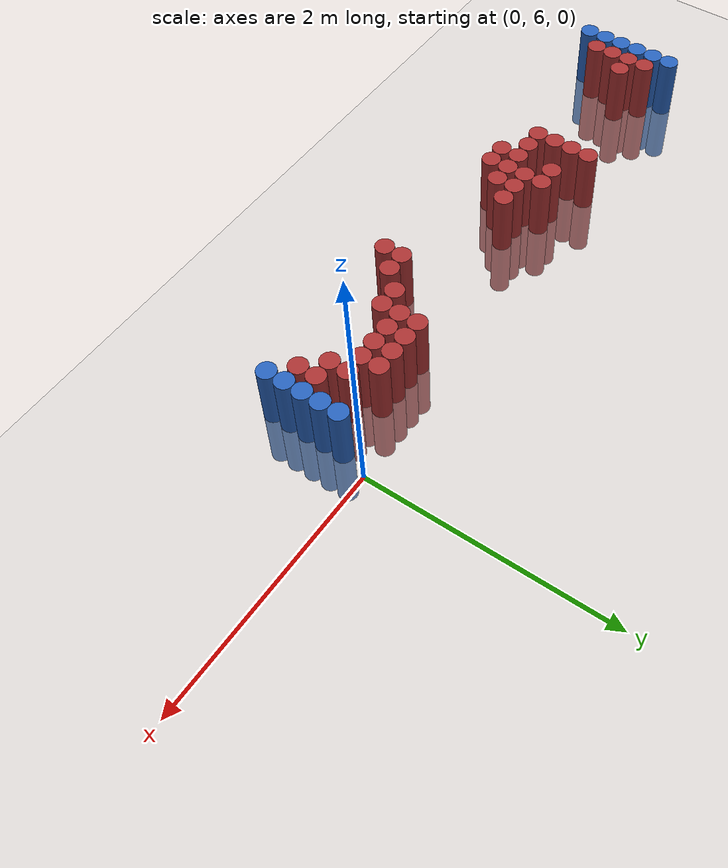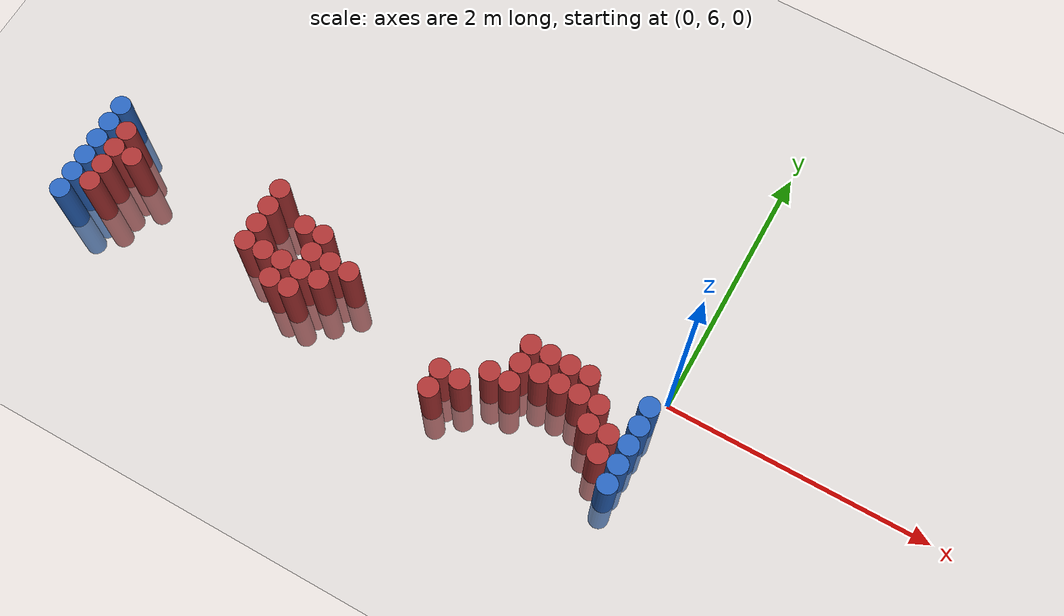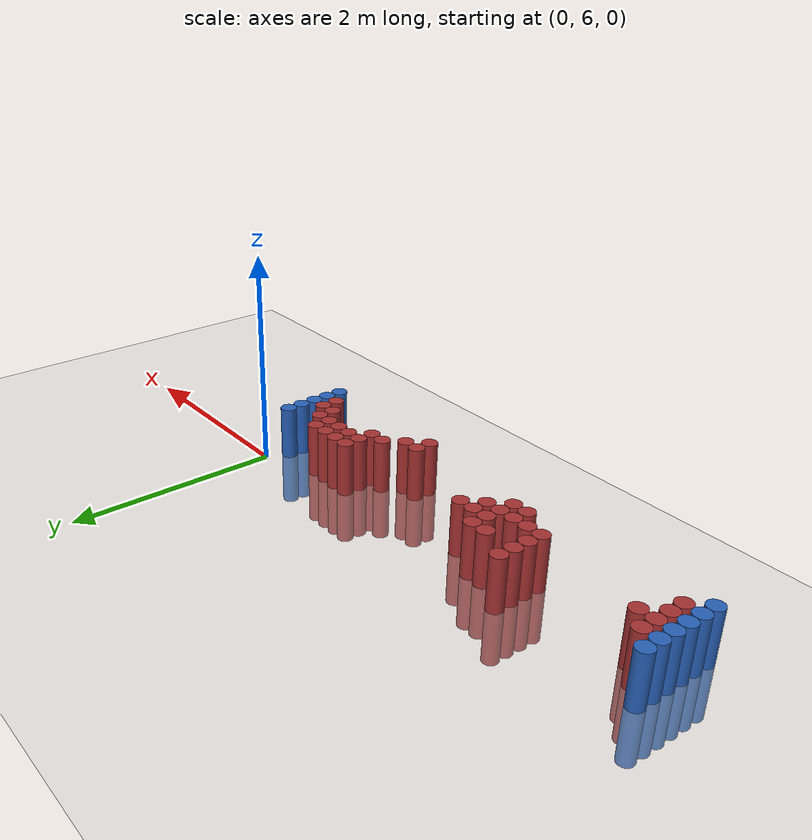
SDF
<sdf version="1.6">
 <world name="default">
  <model name="ground_plane">
   <static>1</static>
   <link name="link">
    <collision name="collision">
     <geometry><plane><normal>0 0 1</normal><size>100 100</size></plane></geometry>
     <surface><friction><ode><mu>100</mu><mu2>50</mu2></ode></friction></surface>
    </collision>
    <visual name="visual">
     <cast_shadows>0</cast_shadows>
     <geometry><plane><normal>0 0 1</normal><size>100 100</size></plane></geometry>
     <material>
      <script><uri>file://media/materials/scripts/gazebo.material</uri><name>Gazebo/Grey</name></script>
     </material>
    </visual>
   </link>
  </model>
  <model name="unit_cylinder_96">
   <static>1</static>
   <pose>-4.425000 5.175000 0.000000 0.000000 0.000000 0.000000</pose>
   <link name="link">
    <inertial>
     <mass>1</mass>
     <inertia><ixx>0.145833</ixx><ixy>0</ixy><ixz>0</ixz><iyy>0.145833</iyy><iyz>0</iyz><izz>0.125</izz></inertia>
    </inertial>
    <collision name="collision">
     <geometry><cylinder><radius>0.075000</radius><length>1</length></cylinder></geometry>
    </collision>
    <visual name="visual">
     <geometry><cylinder><radius>0.075000</radius><length>1</length></cylinder></geometry>
     <material>
      <ambient>0.152000 0.379000 0.720000 1</ambient>
      <diffuse>0.152000 0.379000 0.720000 1</diffuse>
     </material>
     <material>
      <script><name>Gazebo/Grey</name><uri>file://media/materials/scripts/gazebo.material</uri></script>
     </material>
    </visual>
   </link>
  </model>
  <model name="unit_cylinder_97">
   <static>1</static>
   <pose>-4.425000 5.325000 0.000000 0.000000 0.000000 0.000000</pose>
   <link name="link">
    <inertial>
     <mass>1</mass>
     <inertia><ixx>0.145833</ixx><ixy>0</ixy><ixz>0</ixz><iyy>0.145833</iyy><iyz>0</iyz><izz>0.125</izz></inertia>
    </inertial>
    <collision name="collision">
     <geometry><cylinder><radius>0.075000</radius><length>1</length></cylinder></geometry>
    </collision>
    <visual name="visual">
     <geometry><cylinder><radius>0.075000</radius><length>1</length></cylinder></geometry>
     <material>
      <ambient>0.152000 0.379000 0.720000 1</ambient>
      <diffuse>0.152000 0.379000 0.720000 1</diffuse>
     </material>
     <material>
      <script><name>Gazebo/Grey</name><uri>file://media/materials/scripts/gazebo.material</uri></script>
     </material>
    </visual>
   </link>
  </model>
  <model name="unit_cylinder_98">
   <static>1</static>
   <pose>-4.425000 5.475000 0.000000 0.000000 0.000000 0.000000</pose>
   <link name="link">
    <inertial>
     <mass>1</mass>
     <inertia><ixx>0.145833</ixx><ixy>0</ixy><ixz>0</ixz><iyy>0.145833</iyy><iyz>0</iyz><izz>0.125</izz></inertia>
    </inertial>
    <collision name="collision">
     <geometry><cylinder><radius>0.075000</radius><length>1</length></cylinder></geometry>
    </collision>
    <visual name="visual">
     <geometry><cylinder><radius>0.075000</radius><length>1</length></cylinder></geometry>
     <material>
      <ambient>0.152000 0.379000 0.720000 1</ambient>
      <diffuse>0.152000 0.379000 0.720000 1</diffuse>
     </material>
     <material>
      <script><name>Gazebo/Grey</name><uri>file://media/materials/scripts/gazebo.material</uri></script>
     </material>
    </visual>
   </link>
  </model>
  <model name="unit_cylinder_99">
   <static>1</static>
   <pose>-4.425000 5.625000 0.000000 0.000000 0.000000 0.000000</pose>
   <link name="link">
    <inertial>
     <mass>1</mass>
     <inertia><ixx>0.145833</ixx><ixy>0</ixy><ixz>0</ixz><iyy>0.145833</iyy><iyz>0</iyz><izz>0.125</izz></inertia>
    </inertial>
    <collision name="collision">
     <geometry><cylinder><radius>0.075000</radius><length>1</length></cylinder></geometry>
    </collision>
    <visual name="visual">
     <geometry><cylinder><radius>0.075000</radius><length>1</length></cylinder></geometry>
     <material>
      <ambient>0.152000 0.379000 0.720000 1</ambient>
      <diffuse>0.152000 0.379000 0.720000 1</diffuse>
     </material>
     <material>
      <script><name>Gazebo/Grey</name><uri>file://media/materials/scripts/gazebo.material</uri></script>
     </material>
    </visual>
   </link>
  </model>
  <model name="unit_cylinder_100">
   <static>1</static>
   <pose>-4.425000 5.775000 0.000000 0.000000 0.000000 0.000000</pose>
   <link name="link">
    <inertial>
     <mass>1</mass>
     <inertia><ixx>0.145833</ixx><ixy>0</ixy><ixz>0</ixz><iyy>0.145833</iyy><iyz>0</iyz><izz>0.125</izz></inertia>
    </inertial>
    <collision name="collision">
     <geometry><cylinder><radius>0.075000</radius><length>1</length></cylinder></geometry>
    </collision>
    <visual name="visual">
     <geometry><cylinder><radius>0.075000</radius><length>1</length></cylinder></geometry>
     <material>
      <ambient>0.152000 0.379000 0.720000 1</ambient>
      <diffuse>0.152000 0.379000 0.720000 1</diffuse>
     </material>
     <material>
      <script><name>Gazebo/Grey</name><uri>file://media/materials/scripts/gazebo.material</uri></script>
     </material>
    </visual>
   </link>
  </model>
  <model name="unit_cylinder_101">
   <static>1</static>
   <pose>-4.425000 5.925000 0.000000 0.000000 0.000000 0.000000</pose>
   <link name="link">
    <inertial>
     <mass>1</mass>
     <inertia><ixx>0.145833</ixx><ixy>0</ixy><ixz>0</ixz><iyy>0.145833</iyy><iyz>0</iyz><izz>0.125</izz></inertia>
    </inertial>
    <collision name="collision">
     <geometry><cylinder><radius>0.075000</radius><length>1</length></cylinder></geometry>
    </collision>
    <visual name="visual">
     <geometry><cylinder><radius>0.075000</radius><length>1</length></cylinder></geometry>
     <material>
      <ambient>0.152000 0.379000 0.720000 1</ambient>
      <diffuse>0.152000 0.379000 0.720000 1</diffuse>
     </material>
     <material>
      <script><name>Gazebo/Grey</name><uri>file://media/materials/scripts/gazebo.material</uri></script>
     </material>
    </visual>
   </link>
  </model>
  <model name="unit_cylinder_126">
   <static>1</static>
   <pose>-4.275000 5.325000 0.000000 0.000000 0.000000 0.000000</pose>
   <link name="link">
    <inertial>
     <mass>1</mass>
     <inertia><ixx>0.145833</ixx><ixy>0</ixy><ixz>0</ixz><iyy>0.145833</iyy><iyz>0</iyz><izz>0.125</izz></inertia>
    </inertial>
    <collision name="collision">
     <geometry><cylinder><radius>0.075000</radius><length>1</length></cylinder></geometry>
    </collision>
    <visual name="visual">
     <geometry><cylinder><radius>0.075000</radius><length>1</length></cylinder></geometry>
     <material>
      <ambient>0.648000 0.192000 0.192000 1</ambient>
      <diffuse>0.648000 0.192000 0.192000 1</diffuse>
     </material>
     <material>
      <script><name>Gazebo/Grey</name><uri>file://media/materials/scripts/gazebo.material</uri></script>
     </material>
    </visual>
   </link>
  </model>
  <model name="unit_cylinder_127">
   <static>1</static>
   <pose>-4.275000 5.475000 0.000000 0.000000 0.000000 0.000000</pose>
   <link name="link">
    <inertial>
     <mass>1</mass>
     <inertia><ixx>0.145833</ixx><ixy>0</ixy><ixz>0</ixz><iyy>0.145833</iyy><iyz>0</iyz><izz>0.125</izz></inertia>
    </inertial>
    <collision name="collision">
     <geometry><cylinder><radius>0.075000</radius><length>1</length></cylinder></geometry>
    </collision>
    <visual name="visual">
     <geometry><cylinder><radius>0.075000</radius><length>1</length></cylinder></geometry>
     <material>
      <ambient>0.648000 0.192000 0.192000 1</ambient>
      <diffuse>0.648000 0.192000 0.192000 1</diffuse>
     </material>
     <material>
      <script><name>Gazebo/Grey</name><uri>file://media/materials/scripts/gazebo.material</uri></script>
     </material>
    </visual>
   </link>
  </model>
  <model name="unit_cylinder_128">
   <static>1</static>
   <pose>-4.275000 5.625000 0.000000 0.000000 0.000000 0.000000</pose>
   <link name="link">
    <inertial>
     <mass>1</mass>
     <inertia><ixx>0.145833</ixx><ixy>0</ixy><ixz>0</ixz><iyy>0.145833</iyy><iyz>0</iyz><izz>0.125</izz></inertia>
    </inertial>
    <collision name="collision">
     <geometry><cylinder><radius>0.075000</radius><length>1</length></cylinder></geometry>
    </collision>
    <visual name="visual">
     <geometry><cylinder><radius>0.075000</radius><length>1</length></cylinder></geometry>
     <material>
      <ambient>0.648000 0.192000 0.192000 1</ambient>
      <diffuse>0.648000 0.192000 0.192000 1</diffuse>
     </material>
     <material>
      <script><name>Gazebo/Grey</name><uri>file://media/materials/scripts/gazebo.material</uri></script>
     </material>
    </visual>
   </link>
  </model>
  <model name="unit_cylinder_129">
   <static>1</static>
   <pose>-4.275000 5.775000 0.000000 0.000000 0.000000 0.000000</pose>
   <link name="link">
    <inertial>
     <mass>1</mass>
     <inertia><ixx>0.145833</ixx><ixy>0</ixy><ixz>0</ixz><iyy>0.145833</iyy><iyz>0</iyz><izz>0.125</izz></inertia>
    </inertial>
    <collision name="collision">
     <geometry><cylinder><radius>0.075000</radius><length>1</length></cylinder></geometry>
    </collision>
    <visual name="visual">
     <geometry><cylinder><radius>0.075000</radius><length>1</length></cylinder></geometry>
     <material>
      <ambient>0.648000 0.192000 0.192000 1</ambient>
      <diffuse>0.648000 0.192000 0.192000 1</diffuse>
     </material>
     <material>
      <script><name>Gazebo/Grey</name><uri>file://media/materials/scripts/gazebo.material</uri></script>
     </material>
    </visual>
   </link>
  </model>
  <model name="unit_cylinder_141">
   <static>1</static>
   <pose>-4.125000 5.625000 0.000000 0.000000 0.000000 0.000000</pose>
   <link name="link">
    <inertial>
     <mass>1</mass>
     <inertia><ixx>0.145833</ixx><ixy>0</ixy><ixz>0</ixz><iyy>0.145833</iyy><iyz>0</iyz><izz>0.125</izz></inertia>
    </inertial>
    <collision name="collision">
     <geometry><cylinder><radius>0.075000</radius><length>1</length></cylinder></geometry>
    </collision>
    <visual name="visual">
     <geometry><cylinder><radius>0.075000</radius><length>1</length></cylinder></geometry>
     <material>
      <ambient>0.648000 0.192000 0.192000 1</ambient>
      <diffuse>0.648000 0.192000 0.192000 1</diffuse>
     </material>
     <material>
      <script><name>Gazebo/Grey</name><uri>file://media/materials/scripts/gazebo.material</uri></script>
     </material>
    </visual>
   </link>
  </model>
  <model name="unit_cylinder_172">
   <static>1</static>
   <pose>-3.075000 5.475000 0.000000 0.000000 0.000000 0.000000</pose>
   <link name="link">
    <inertial>
     <mass>1</mass>
     <inertia><ixx>0.145833</ixx><ixy>0</ixy><ixz>0</ixz><iyy>0.145833</iyy><iyz>0</iyz><izz>0.125</izz></inertia>
    </inertial>
    <collision name="collision">
     <geometry><cylinder><radius>0.075000</radius><length>1</length></cylinder></geometry>
    </collision>
    <visual name="visual">
     <geometry><cylinder><radius>0.075000</radius><length>1</length></cylinder></geometry>
     <material>
      <ambient>0.648000 0.192000 0.192000 1</ambient>
      <diffuse>0.648000 0.192000 0.192000 1</diffuse>
     </material>
     <material>
      <script><name>Gazebo/Grey</name><uri>file://media/materials/scripts/gazebo.material</uri></script>
     </material>
    </visual>
   </link>
  </model>
  <model name="unit_cylinder_173">
   <static>1</static>
   <pose>-3.075000 5.625000 0.000000 0.000000 0.000000 0.000000</pose>
   <link name="link">
    <inertial>
     <mass>1</mass>
     <inertia><ixx>0.145833</ixx><ixy>0</ixy><ixz>0</ixz><iyy>0.145833</iyy><iyz>0</iyz><izz>0.125</izz></inertia>
    </inertial>
    <collision name="collision">
     <geometry><cylinder><radius>0.075000</radius><length>1</length></cylinder></geometry>
    </collision>
    <visual name="visual">
     <geometry><cylinder><radius>0.075000</radius><length>1</length></cylinder></geometry>
     <material>
      <ambient>0.648000 0.192000 0.192000 1</ambient>
      <diffuse>0.648000 0.192000 0.192000 1</diffuse>
     </material>
     <material>
      <script><name>Gazebo/Grey</name><uri>file://media/materials/scripts/gazebo.material</uri></script>
     </material>
    </visual>
   </link>
  </model>
  <model name="unit_cylinder_174">
   <static>1</static>
   <pose>-3.075000 5.775000 0.000000 0.000000 0.000000 0.000000</pose>
   <link name="link">
    <inertial>
     <mass>1</mass>
     <inertia><ixx>0.145833</ixx><ixy>0</ixy><ixz>0</ixz><iyy>0.145833</iyy><iyz>0</iyz><izz>0.125</izz></inertia>
    </inertial>
    <collision name="collision">
     <geometry><cylinder><radius>0.075000</radius><length>1</length></cylinder></geometry>
    </collision>
    <visual name="visual">
     <geometry><cylinder><radius>0.075000</radius><length>1</length></cylinder></geometry>
     <material>
      <ambient>0.648000 0.192000 0.192000 1</ambient>
      <diffuse>0.648000 0.192000 0.192000 1</diffuse>
     </material>
     <material>
      <script><name>Gazebo/Grey</name><uri>file://media/materials/scripts/gazebo.material</uri></script>
     </material>
    </visual>
   </link>
  </model>
  <model name="unit_cylinder_175">
   <static>1</static>
   <pose>-3.075000 5.925000 0.000000 0.000000 0.000000 0.000000</pose>
   <link name="link">
    <inertial>
     <mass>1</mass>
     <inertia><ixx>0.145833</ixx><ixy>0</ixy><ixz>0</ixz><iyy>0.145833</iyy><iyz>0</iyz><izz>0.125</izz></inertia>
    </inertial>
    <collision name="collision">
     <geometry><cylinder><radius>0.075000</radius><length>1</length></cylinder></geometry>
    </collision>
    <visual name="visual">
     <geometry><cylinder><radius>0.075000</radius><length>1</length></cylinder></geometry>
     <material>
      <ambient>0.648000 0.192000 0.192000 1</ambient>
      <diffuse>0.648000 0.192000 0.192000 1</diffuse>
     </material>
     <material>
      <script><name>Gazebo/Grey</name><uri>file://media/materials/scripts/gazebo.material</uri></script>
     </material>
    </visual>
   </link>
  </model>
  <model name="unit_cylinder_176">
   <static>1</static>
   <pose>-2.925000 5.475000 0.000000 0.000000 0.000000 0.000000</pose>
   <link name="link">
    <inertial>
     <mass>1</mass>
     <inertia><ixx>0.145833</ixx><ixy>0</ixy><ixz>0</ixz><iyy>0.145833</iyy><iyz>0</iyz><izz>0.125</izz></inertia>
    </inertial>
    <collision name="collision">
     <geometry><cylinder><radius>0.075000</radius><length>1</length></cylinder></geometry>
    </collision>
    <visual name="visual">
     <geometry><cylinder><radius>0.075000</radius><length>1</length></cylinder></geometry>
     <material>
      <ambient>0.648000 0.192000 0.192000 1</ambient>
      <diffuse>0.648000 0.192000 0.192000 1</diffuse>
     </material>
     <material>
      <script><name>Gazebo/Grey</name><uri>file://media/materials/scripts/gazebo.material</uri></script>
     </material>
    </visual>
   </link>
  </model>
  <model name="unit_cylinder_179">
   <static>1</static>
   <pose>-2.775000 5.325000 0.000000 0.000000 0.000000 0.000000</pose>
   <link name="link">
    <inertial>
     <mass>1</mass>
     <inertia><ixx>0.145833</ixx><ixy>0</ixy><ixz>0</ixz><iyy>0.145833</iyy><iyz>0</iyz><izz>0.125</izz></inertia>
    </inertial>
    <collision name="collision">
     <geometry><cylinder><radius>0.075000</radius><length>1</length></cylinder></geometry>
    </collision>
    <visual name="visual">
     <geometry><cylinder><radius>0.075000</radius><length>1</length></cylinder></geometry>
     <material>
      <ambient>0.648000 0.192000 0.192000 1</ambient>
      <diffuse>0.648000 0.192000 0.192000 1</diffuse>
     </material>
     <material>
      <script><name>Gazebo/Grey</name><uri>file://media/materials/scripts/gazebo.material</uri></script>
     </material>
    </visual>
   </link>
  </model>
  <model name="unit_cylinder_180">
   <static>1</static>
   <pose>-2.775000 5.475000 0.000000 0.000000 0.000000 0.000000</pose>
   <link name="link">
    <inertial>
     <mass>1</mass>
     <inertia><ixx>0.145833</ixx><ixy>0</ixy><ixz>0</ixz><iyy>0.145833</iyy><iyz>0</iyz><izz>0.125</izz></inertia>
    </inertial>
    <collision name="collision">
     <geometry><cylinder><radius>0.075000</radius><length>1</length></cylinder></geometry>
    </collision>
    <visual name="visual">
     <geometry><cylinder><radius>0.075000</radius><length>1</length></cylinder></geometry>
     <material>
      <ambient>0.648000 0.192000 0.192000 1</ambient>
      <diffuse>0.648000 0.192000 0.192000 1</diffuse>
     </material>
     <material>
      <script><name>Gazebo/Grey</name><uri>file://media/materials/scripts/gazebo.material</uri></script>
     </material>
    </visual>
   </link>
  </model>
  <model name="unit_cylinder_181">
   <static>1</static>
   <pose>-2.775000 5.775000 0.000000 0.000000 0.000000 0.000000</pose>
   <link name="link">
    <inertial>
     <mass>1</mass>
     <inertia><ixx>0.145833</ixx><ixy>0</ixy><ixz>0</ixz><iyy>0.145833</iyy><iyz>0</iyz><izz>0.125</izz></inertia>
    </inertial>
    <collision name="collision">
     <geometry><cylinder><radius>0.075000</radius><length>1</length></cylinder></geometry>
    </collision>
    <visual name="visual">
     <geometry><cylinder><radius>0.075000</radius><length>1</length></cylinder></geometry>
     <material>
      <ambient>0.648000 0.192000 0.192000 1</ambient>
      <diffuse>0.648000 0.192000 0.192000 1</diffuse>
     </material>
     <material>
      <script><name>Gazebo/Grey</name><uri>file://media/materials/scripts/gazebo.material</uri></script>
     </material>
    </visual>
   </link>
  </model>
  <model name="unit_cylinder_183">
   <static>1</static>
   <pose>-2.625000 5.325000 0.000000 0.000000 0.000000 0.000000</pose>
   <link name="link">
    <inertial>
     <mass>1</mass>
     <inertia><ixx>0.145833</ixx><ixy>0</ixy><ixz>0</ixz><iyy>0.145833</iyy><iyz>0</iyz><izz>0.125</izz></inertia>
    </inertial>
    <collision name="collision">
     <geometry><cylinder><radius>0.075000</radius><length>1</length></cylinder></geometry>
    </collision>
    <visual name="visual">
     <geometry><cylinder><radius>0.075000</radius><length>1</length></cylinder></geometry>
     <material>
      <ambient>0.648000 0.192000 0.192000 1</ambient>
      <diffuse>0.648000 0.192000 0.192000 1</diffuse>
     </material>
     <material>
      <script><name>Gazebo/Grey</name><uri>file://media/materials/scripts/gazebo.material</uri></script>
     </material>
    </visual>
   </link>
  </model>
  <model name="unit_cylinder_184">
   <static>1</static>
   <pose>-2.625000 5.475000 0.000000 0.000000 0.000000 0.000000</pose>
   <link name="link">
    <inertial>
     <mass>1</mass>
     <inertia><ixx>0.145833</ixx><ixy>0</ixy><ixz>0</ixz><iyy>0.145833</iyy><iyz>0</iyz><izz>0.125</izz></inertia>
    </inertial>
    <collision name="collision">
     <geometry><cylinder><radius>0.075000</radius><length>1</length></cylinder></geometry>
    </collision>
    <visual name="visual">
     <geometry><cylinder><radius>0.075000</radius><length>1</length></cylinder></geometry>
     <material>
      <ambient>0.648000 0.192000 0.192000 1</ambient>
      <diffuse>0.648000 0.192000 0.192000 1</diffuse>
     </material>
     <material>
      <script><name>Gazebo/Grey</name><uri>file://media/materials/scripts/gazebo.material</uri></script>
     </material>
    </visual>
   </link>
  </model>
  <model name="unit_cylinder_185">
   <static>1</static>
   <pose>-2.625000 5.625000 0.000000 0.000000 0.000000 0.000000</pose>
   <link name="link">
    <inertial>
     <mass>1</mass>
     <inertia><ixx>0.145833</ixx><ixy>0</ixy><ixz>0</ixz><iyy>0.145833</iyy><iyz>0</iyz><izz>0.125</izz></inertia>
    </inertial>
    <collision name="collision">
     <geometry><cylinder><radius>0.075000</radius><length>1</length></cylinder></geometry>
    </collision>
    <visual name="visual">
     <geometry><cylinder><radius>0.075000</radius><length>1</length></cylinder></geometry>
     <material>
      <ambient>0.648000 0.192000 0.192000 1</ambient>
      <diffuse>0.648000 0.192000 0.192000 1</diffuse>
     </material>
     <material>
      <script><name>Gazebo/Grey</name><uri>file://media/materials/scripts/gazebo.material</uri></script>
     </material>
    </visual>
   </link>
  </model>
  <model name="unit_cylinder_186">
   <static>1</static>
   <pose>-2.625000 5.775000 0.000000 0.000000 0.000000 0.000000</pose>
   <link name="link">
    <inertial>
     <mass>1</mass>
     <inertia><ixx>0.145833</ixx><ixy>0</ixy><ixz>0</ixz><iyy>0.145833</iyy><iyz>0</iyz><izz>0.125</izz></inertia>
    </inertial>
    <collision name="collision">
     <geometry><cylinder><radius>0.075000</radius><length>1</length></cylinder></geometry>
    </collision>
    <visual name="visual">
     <geometry><cylinder><radius>0.075000</radius><length>1</length></cylinder></geometry>
     <material>
      <ambient>0.648000 0.192000 0.192000 1</ambient>
      <diffuse>0.648000 0.192000 0.192000 1</diffuse>
     </material>
     <material>
      <script><name>Gazebo/Grey</name><uri>file://media/materials/scripts/gazebo.material</uri></script>
     </material>
    </visual>
   </link>
  </model>
  <model name="unit_cylinder_187">
   <static>1</static>
   <pose>-2.475000 5.475000 0.000000 0.000000 0.000000 0.000000</pose>
   <link name="link">
    <inertial>
     <mass>1</mass>
     <inertia><ixx>0.145833</ixx><ixy>0</ixy><ixz>0</ixz><iyy>0.145833</iyy><iyz>0</iyz><izz>0.125</izz></inertia>
    </inertial>
    <collision name="collision">
     <geometry><cylinder><radius>0.075000</radius><length>1</length></cylinder></geometry>
    </collision>
    <visual name="visual">
     <geometry><cylinder><radius>0.075000</radius><length>1</length></cylinder></geometry>
     <material>
      <ambient>0.648000 0.192000 0.192000 1</ambient>
      <diffuse>0.648000 0.192000 0.192000 1</diffuse>
     </material>
     <material>
      <script><name>Gazebo/Grey</name><uri>file://media/materials/scripts/gazebo.material</uri></script>
     </material>
    </visual>
   </link>
  </model>
  <model name="unit_cylinder_188">
   <static>1</static>
   <pose>-2.475000 5.625000 0.000000 0.000000 0.000000 0.000000</pose>
   <link name="link">
    <inertial>
     <mass>1</mass>
     <inertia><ixx>0.145833</ixx><ixy>0</ixy><ixz>0</ixz><iyy>0.145833</iyy><iyz>0</iyz><izz>0.125</izz></inertia>
    </inertial>
    <collision name="collision">
     <geometry><cylinder><radius>0.075000</radius><length>1</length></cylinder></geometry>
    </collision>
    <visual name="visual">
     <geometry><cylinder><radius>0.075000</radius><length>1</length></cylinder></geometry>
     <material>
      <ambient>0.648000 0.192000 0.192000 1</ambient>
      <diffuse>0.648000 0.192000 0.192000 1</diffuse>
     </material>
     <material>
      <script><name>Gazebo/Grey</name><uri>file://media/materials/scripts/gazebo.material</uri></script>
     </material>
    </visual>
   </link>
  </model>
  <model name="unit_cylinder_189">
   <static>1</static>
   <pose>-2.325000 5.625000 0.000000 0.000000 0.000000 0.000000</pose>
   <link name="link">
    <inertial>
     <mass>1</mass>
     <inertia><ixx>0.145833</ixx><ixy>0</ixy><ixz>0</ixz><iyy>0.145833</iyy><iyz>0</iyz><izz>0.125</izz></inertia>
    </inertial>
    <collision name="collision">
     <geometry><cylinder><radius>0.075000</radius><length>1</length></cylinder></geometry>
    </collision>
    <visual name="visual">
     <geometry><cylinder><radius>0.075000</radius><length>1</length></cylinder></geometry>
     <material>
      <ambient>0.648000 0.192000 0.192000 1</ambient>
      <diffuse>0.648000 0.192000 0.192000 1</diffuse>
     </material>
     <material>
      <script><name>Gazebo/Grey</name><uri>file://media/materials/scripts/gazebo.material</uri></script>
     </material>
    </visual>
   </link>
  </model>
  <model name="unit_cylinder_224">
   <static>1</static>
   <pose>-1.425000 5.175000 0.000000 0.000000 0.000000 0.000000</pose>
   <link name="link">
    <inertial>
     <mass>1</mass>
     <inertia><ixx>0.145833</ixx><ixy>0</ixy><ixz>0</ixz><iyy>0.145833</iyy><iyz>0</iyz><izz>0.125</izz></inertia>
    </inertial>
    <collision name="collision">
     <geometry><cylinder><radius>0.075000</radius><length>1</length></cylinder></geometry>
    </collision>
    <visual name="visual">
     <geometry><cylinder><radius>0.075000</radius><length>1</length></cylinder></geometry>
     <material>
      <ambient>0.648000 0.192000 0.192000 1</ambient>
      <diffuse>0.648000 0.192000 0.192000 1</diffuse>
     </material>
     <material>
      <script><name>Gazebo/Grey</name><uri>file://media/materials/scripts/gazebo.material</uri></script>
     </material>
    </visual>
   </link>
  </model>
  <model name="unit_cylinder_225">
   <static>1</static>
   <pose>-1.425000 5.325000 0.000000 0.000000 0.000000 0.000000</pose>
   <link name="link">
    <inertial>
     <mass>1</mass>
     <inertia><ixx>0.145833</ixx><ixy>0</ixy><ixz>0</ixz><iyy>0.145833</iyy><iyz>0</iyz><izz>0.125</izz></inertia>
    </inertial>
    <collision name="collision">
     <geometry><cylinder><radius>0.075000</radius><length>1</length></cylinder></geometry>
    </collision>
    <visual name="visual">
     <geometry><cylinder><radius>0.075000</radius><length>1</length></cylinder></geometry>
     <material>
      <ambient>0.648000 0.192000 0.192000 1</ambient>
      <diffuse>0.648000 0.192000 0.192000 1</diffuse>
     </material>
     <material>
      <script><name>Gazebo/Grey</name><uri>file://media/materials/scripts/gazebo.material</uri></script>
     </material>
    </visual>
   </link>
  </model>
  <model name="unit_cylinder_230">
   <static>1</static>
   <pose>-1.275000 5.325000 0.000000 0.000000 0.000000 0.000000</pose>
   <link name="link">
    <inertial>
     <mass>1</mass>
     <inertia><ixx>0.145833</ixx><ixy>0</ixy><ixz>0</ixz><iyy>0.145833</iyy><iyz>0</iyz><izz>0.125</izz></inertia>
    </inertial>
    <collision name="collision">
     <geometry><cylinder><radius>0.075000</radius><length>1</length></cylinder></geometry>
    </collision>
    <visual name="visual">
     <geometry><cylinder><radius>0.075000</radius><length>1</length></cylinder></geometry>
     <material>
      <ambient>0.648000 0.192000 0.192000 1</ambient>
      <diffuse>0.648000 0.192000 0.192000 1</diffuse>
     </material>
     <material>
      <script><name>Gazebo/Grey</name><uri>file://media/materials/scripts/gazebo.material</uri></script>
     </material>
    </visual>
   </link>
  </model>
  <model name="unit_cylinder_234">
   <static>1</static>
   <pose>-1.125000 5.475000 0.000000 0.000000 0.000000 0.000000</pose>
   <link name="link">
    <inertial>
     <mass>1</mass>
     <inertia><ixx>0.145833</ixx><ixy>0</ixy><ixz>0</ixz><iyy>0.145833</iyy><iyz>0</iyz><izz>0.125</izz></inertia>
    </inertial>
    <collision name="collision">
     <geometry><cylinder><radius>0.075000</radius><length>1</length></cylinder></geometry>
    </collision>
    <visual name="visual">
     <geometry><cylinder><radius>0.075000</radius><length>1</length></cylinder></geometry>
     <material>
      <ambient>0.648000 0.192000 0.192000 1</ambient>
      <diffuse>0.648000 0.192000 0.192000 1</diffuse>
     </material>
     <material>
      <script><name>Gazebo/Grey</name><uri>file://media/materials/scripts/gazebo.material</uri></script>
     </material>
    </visual>
   </link>
  </model>
  <model name="unit_cylinder_242">
   <static>1</static>
   <pose>-0.975000 5.475000 0.000000 0.000000 0.000000 0.000000</pose>
   <link name="link">
    <inertial>
     <mass>1</mass>
     <inertia><ixx>0.145833</ixx><ixy>0</ixy><ixz>0</ixz><iyy>0.145833</iyy><iyz>0</iyz><izz>0.125</izz></inertia>
    </inertial>
    <collision name="collision">
     <geometry><cylinder><radius>0.075000</radius><length>1</length></cylinder></geometry>
    </collision>
    <visual name="visual">
     <geometry><cylinder><radius>0.075000</radius><length>1</length></cylinder></geometry>
     <material>
      <ambient>0.648000 0.192000 0.192000 1</ambient>
      <diffuse>0.648000 0.192000 0.192000 1</diffuse>
     </material>
     <material>
      <script><name>Gazebo/Grey</name><uri>file://media/materials/scripts/gazebo.material</uri></script>
     </material>
    </visual>
   </link>
  </model>
  <model name="unit_cylinder_243">
   <static>1</static>
   <pose>-0.975000 5.625000 0.000000 0.000000 0.000000 0.000000</pose>
   <link name="link">
    <inertial>
     <mass>1</mass>
     <inertia><ixx>0.145833</ixx><ixy>0</ixy><ixz>0</ixz><iyy>0.145833</iyy><iyz>0</iyz><izz>0.125</izz></inertia>
    </inertial>
    <collision name="collision">
     <geometry><cylinder><radius>0.075000</radius><length>1</length></cylinder></geometry>
    </collision>
    <visual name="visual">
     <geometry><cylinder><radius>0.075000</radius><length>1</length></cylinder></geometry>
     <material>
      <ambient>0.648000 0.192000 0.192000 1</ambient>
      <diffuse>0.648000 0.192000 0.192000 1</diffuse>
     </material>
     <material>
      <script><name>Gazebo/Grey</name><uri>file://media/materials/scripts/gazebo.material</uri></script>
     </material>
    </visual>
   </link>
  </model>
  <model name="unit_cylinder_244">
   <static>1</static>
   <pose>-0.975000 5.775000 0.000000 0.000000 0.000000 0.000000</pose>
   <link name="link">
    <inertial>
     <mass>1</mass>
     <inertia><ixx>0.145833</ixx><ixy>0</ixy><ixz>0</ixz><iyy>0.145833</iyy><iyz>0</iyz><izz>0.125</izz></inertia>
    </inertial>
    <collision name="collision">
     <geometry><cylinder><radius>0.075000</radius><length>1</length></cylinder></geometry>
    </collision>
    <visual name="visual">
     <geometry><cylinder><radius>0.075000</radius><length>1</length></cylinder></geometry>
     <material>
      <ambient>0.648000 0.192000 0.192000 1</ambient>
      <diffuse>0.648000 0.192000 0.192000 1</diffuse>
     </material>
     <material>
      <script><name>Gazebo/Grey</name><uri>file://media/materials/scripts/gazebo.material</uri></script>
     </material>
    </visual>
   </link>
  </model>
  <model name="unit_cylinder_253">
   <static>1</static>
   <pose>-0.825000 5.625000 0.000000 0.000000 0.000000 0.000000</pose>
   <link name="link">
    <inertial>
     <mass>1</mass>
     <inertia><ixx>0.145833</ixx><ixy>0</ixy><ixz>0</ixz><iyy>0.145833</iyy><iyz>0</iyz><izz>0.125</izz></inertia>
    </inertial>
    <collision name="collision">
     <geometry><cylinder><radius>0.075000</radius><length>1</length></cylinder></geometry>
    </collision>
    <visual name="visual">
     <geometry><cylinder><radius>0.075000</radius><length>1</length></cylinder></geometry>
     <material>
      <ambient>0.648000 0.192000 0.192000 1</ambient>
      <diffuse>0.648000 0.192000 0.192000 1</diffuse>
     </material>
     <material>
      <script><name>Gazebo/Grey</name><uri>file://media/materials/scripts/gazebo.material</uri></script>
     </material>
    </visual>
   </link>
  </model>
  <model name="unit_cylinder_254">
   <static>1</static>
   <pose>-0.825000 5.775000 0.000000 0.000000 0.000000 0.000000</pose>
   <link name="link">
    <inertial>
     <mass>1</mass>
     <inertia><ixx>0.145833</ixx><ixy>0</ixy><ixz>0</ixz><iyy>0.145833</iyy><iyz>0</iyz><izz>0.125</izz></inertia>
    </inertial>
    <collision name="collision">
     <geometry><cylinder><radius>0.075000</radius><length>1</length></cylinder></geometry>
    </collision>
    <visual name="visual">
     <geometry><cylinder><radius>0.075000</radius><length>1</length></cylinder></geometry>
     <material>
      <ambient>0.648000 0.192000 0.192000 1</ambient>
      <diffuse>0.648000 0.192000 0.192000 1</diffuse>
     </material>
     <material>
      <script><name>Gazebo/Grey</name><uri>file://media/materials/scripts/gazebo.material</uri></script>
     </material>
    </visual>
   </link>
  </model>
  <model name="unit_cylinder_262">
   <static>1</static>
   <pose>-0.675000 5.625000 0.000000 0.000000 0.000000 0.000000</pose>
   <link name="link">
    <inertial>
     <mass>1</mass>
     <inertia><ixx>0.145833</ixx><ixy>0</ixy><ixz>0</ixz><iyy>0.145833</iyy><iyz>0</iyz><izz>0.125</izz></inertia>
    </inertial>
    <collision name="collision">
     <geometry><cylinder><radius>0.075000</radius><length>1</length></cylinder></geometry>
    </collision>
    <visual name="visual">
     <geometry><cylinder><radius>0.075000</radius><length>1</length></cylinder></geometry>
     <material>
      <ambient>0.648000 0.192000 0.192000 1</ambient>
      <diffuse>0.648000 0.192000 0.192000 1</diffuse>
     </material>
     <material>
      <script><name>Gazebo/Grey</name><uri>file://media/materials/scripts/gazebo.material</uri></script>
     </material>
    </visual>
   </link>
  </model>
  <model name="unit_cylinder_263">
   <static>1</static>
   <pose>-0.675000 5.775000 0.000000 0.000000 0.000000 0.000000</pose>
   <link name="link">
    <inertial>
     <mass>1</mass>
     <inertia><ixx>0.145833</ixx><ixy>0</ixy><ixz>0</ixz><iyy>0.145833</iyy><iyz>0</iyz><izz>0.125</izz></inertia>
    </inertial>
    <collision name="collision">
     <geometry><cylinder><radius>0.075000</radius><length>1</length></cylinder></geometry>
    </collision>
    <visual name="visual">
     <geometry><cylinder><radius>0.075000</radius><length>1</length></cylinder></geometry>
     <material>
      <ambient>0.648000 0.192000 0.192000 1</ambient>
      <diffuse>0.648000 0.192000 0.192000 1</diffuse>
     </material>
     <material>
      <script><name>Gazebo/Grey</name><uri>file://media/materials/scripts/gazebo.material</uri></script>
     </material>
    </visual>
   </link>
  </model>
  <model name="unit_cylinder_272">
   <static>1</static>
   <pose>-0.525000 5.625000 0.000000 0.000000 0.000000 0.000000</pose>
   <link name="link">
    <inertial>
     <mass>1</mass>
     <inertia><ixx>0.145833</ixx><ixy>0</ixy><ixz>0</ixz><iyy>0.145833</iyy><iyz>0</iyz><izz>0.125</izz></inertia>
    </inertial>
    <collision name="collision">
     <geometry><cylinder><radius>0.075000</radius><length>1</length></cylinder></geometry>
    </collision>
    <visual name="visual">
     <geometry><cylinder><radius>0.075000</radius><length>1</length></cylinder></geometry>
     <material>
      <ambient>0.648000 0.192000 0.192000 1</ambient>
      <diffuse>0.648000 0.192000 0.192000 1</diffuse>
     </material>
     <material>
      <script><name>Gazebo/Grey</name><uri>file://media/materials/scripts/gazebo.material</uri></script>
     </material>
    </visual>
   </link>
  </model>
  <model name="unit_cylinder_273">
   <static>1</static>
   <pose>-0.525000 5.775000 0.000000 0.000000 0.000000 0.000000</pose>
   <link name="link">
    <inertial>
     <mass>1</mass>
     <inertia><ixx>0.145833</ixx><ixy>0</ixy><ixz>0</ixz><iyy>0.145833</iyy><iyz>0</iyz><izz>0.125</izz></inertia>
    </inertial>
    <collision name="collision">
     <geometry><cylinder><radius>0.075000</radius><length>1</length></cylinder></geometry>
    </collision>
    <visual name="visual">
     <geometry><cylinder><radius>0.075000</radius><length>1</length></cylinder></geometry>
     <material>
      <ambient>0.648000 0.192000 0.192000 1</ambient>
      <diffuse>0.648000 0.192000 0.192000 1</diffuse>
     </material>
     <material>
      <script><name>Gazebo/Grey</name><uri>file://media/materials/scripts/gazebo.material</uri></script>
     </material>
    </visual>
   </link>
  </model>
  <model name="unit_cylinder_279">
   <static>1</static>
   <pose>-0.375000 5.475000 0.000000 0.000000 0.000000 0.000000</pose>
   <link name="link">
    <inertial>
     <mass>1</mass>
     <inertia><ixx>0.145833</ixx><ixy>0</ixy><ixz>0</ixz><iyy>0.145833</iyy><iyz>0</iyz><izz>0.125</izz></inertia>
    </inertial>
    <collision name="collision">
     <geometry><cylinder><radius>0.075000</radius><length>1</length></cylinder></geometry>
    </collision>
    <visual name="visual">
     <geometry><cylinder><radius>0.075000</radius><length>1</length></cylinder></geometry>
     <material>
      <ambient>0.648000 0.192000 0.192000 1</ambient>
      <diffuse>0.648000 0.192000 0.192000 1</diffuse>
     </material>
     <material>
      <script><name>Gazebo/Grey</name><uri>file://media/materials/scripts/gazebo.material</uri></script>
     </material>
    </visual>
   </link>
  </model>
  <model name="unit_cylinder_280">
   <static>1</static>
   <pose>-0.375000 5.625000 0.000000 0.000000 0.000000 0.000000</pose>
   <link name="link">
    <inertial>
     <mass>1</mass>
     <inertia><ixx>0.145833</ixx><ixy>0</ixy><ixz>0</ixz><iyy>0.145833</iyy><iyz>0</iyz><izz>0.125</izz></inertia>
    </inertial>
    <collision name="collision">
     <geometry><cylinder><radius>0.075000</radius><length>1</length></cylinder></geometry>
    </collision>
    <visual name="visual">
     <geometry><cylinder><radius>0.075000</radius><length>1</length></cylinder></geometry>
     <material>
      <ambient>0.648000 0.192000 0.192000 1</ambient>
      <diffuse>0.648000 0.192000 0.192000 1</diffuse>
     </material>
     <material>
      <script><name>Gazebo/Grey</name><uri>file://media/materials/scripts/gazebo.material</uri></script>
     </material>
    </visual>
   </link>
  </model>
  <model name="unit_cylinder_292">
   <static>1</static>
   <pose>-0.225000 5.325000 0.000000 0.000000 0.000000 0.000000</pose>
   <link name="link">
    <inertial>
     <mass>1</mass>
     <inertia><ixx>0.145833</ixx><ixy>0</ixy><ixz>0</ixz><iyy>0.145833</iyy><iyz>0</iyz><izz>0.125</izz></inertia>
    </inertial>
    <collision name="collision">
     <geometry><cylinder><radius>0.075000</radius><length>1</length></cylinder></geometry>
    </collision>
    <visual name="visual">
     <geometry><cylinder><radius>0.075000</radius><length>1</length></cylinder></geometry>
     <material>
      <ambient>0.648000 0.192000 0.192000 1</ambient>
      <diffuse>0.648000 0.192000 0.192000 1</diffuse>
     </material>
     <material>
      <script><name>Gazebo/Grey</name><uri>file://media/materials/scripts/gazebo.material</uri></script>
     </material>
    </visual>
   </link>
  </model>
  <model name="unit_cylinder_293">
   <static>1</static>
   <pose>-0.225000 5.475000 0.000000 0.000000 0.000000 0.000000</pose>
   <link name="link">
    <inertial>
     <mass>1</mass>
     <inertia><ixx>0.145833</ixx><ixy>0</ixy><ixz>0</ixz><iyy>0.145833</iyy><iyz>0</iyz><izz>0.125</izz></inertia>
    </inertial>
    <collision name="collision">
     <geometry><cylinder><radius>0.075000</radius><length>1</length></cylinder></geometry>
    </collision>
    <visual name="visual">
     <geometry><cylinder><radius>0.075000</radius><length>1</length></cylinder></geometry>
     <material>
      <ambient>0.648000 0.192000 0.192000 1</ambient>
      <diffuse>0.648000 0.192000 0.192000 1</diffuse>
     </material>
     <material>
      <script><name>Gazebo/Grey</name><uri>file://media/materials/scripts/gazebo.material</uri></script>
     </material>
    </visual>
   </link>
  </model>
  <model name="unit_cylinder_306">
   <static>1</static>
   <pose>-0.075000 5.175000 0.000000 0.000000 0.000000 0.000000</pose>
   <link name="link">
    <inertial>
     <mass>1</mass>
     <inertia><ixx>0.145833</ixx><ixy>0</ixy><ixz>0</ixz><iyy>0.145833</iyy><iyz>0</iyz><izz>0.125</izz></inertia>
    </inertial>
    <collision name="collision">
     <geometry><cylinder><radius>0.075000</radius><length>1</length></cylinder></geometry>
    </collision>
    <visual name="visual">
     <geometry><cylinder><radius>0.075000</radius><length>1</length></cylinder></geometry>
     <material>
      <ambient>0.152000 0.379000 0.720000 1</ambient>
      <diffuse>0.152000 0.379000 0.720000 1</diffuse>
     </material>
     <material>
      <script><name>Gazebo/Grey</name><uri>file://media/materials/scripts/gazebo.material</uri></script>
     </material>
    </visual>
   </link>
  </model>
  <model name="unit_cylinder_307">
   <static>1</static>
   <pose>-0.075000 5.325000 0.000000 0.000000 0.000000 0.000000</pose>
   <link name="link">
    <inertial>
     <mass>1</mass>
     <inertia><ixx>0.145833</ixx><ixy>0</ixy><ixz>0</ixz><iyy>0.145833</iyy><iyz>0</iyz><izz>0.125</izz></inertia>
    </inertial>
    <collision name="collision">
     <geometry><cylinder><radius>0.075000</radius><length>1</length></cylinder></geometry>
    </collision>
    <visual name="visual">
     <geometry><cylinder><radius>0.075000</radius><length>1</length></cylinder></geometry>
     <material>
      <ambient>0.152000 0.379000 0.720000 1</ambient>
      <diffuse>0.152000 0.379000 0.720000 1</diffuse>
     </material>
     <material>
      <script><name>Gazebo/Grey</name><uri>file://media/materials/scripts/gazebo.material</uri></script>
     </material>
    </visual>
   </link>
  </model>
  <model name="unit_cylinder_308">
   <static>1</static>
   <pose>-0.075000 5.475000 0.000000 0.000000 0.000000 0.000000</pose>
   <link name="link">
    <inertial>
     <mass>1</mass>
     <inertia><ixx>0.145833</ixx><ixy>0</ixy><ixz>0</ixz><iyy>0.145833</iyy><iyz>0</iyz><izz>0.125</izz></inertia>
    </inertial>
    <collision name="collision">
     <geometry><cylinder><radius>0.075000</radius><length>1</length></cylinder></geometry>
    </collision>
    <visual name="visual">
     <geometry><cylinder><radius>0.075000</radius><length>1</length></cylinder></geometry>
     <material>
      <ambient>0.152000 0.379000 0.720000 1</ambient>
      <diffuse>0.152000 0.379000 0.720000 1</diffuse>
     </material>
     <material>
      <script><name>Gazebo/Grey</name><uri>file://media/materials/scripts/gazebo.material</uri></script>
     </material>
    </visual>
   </link>
  </model>
  <model name="unit_cylinder_309">
   <static>1</static>
   <pose>-0.075000 5.625000 0.000000 0.000000 0.000000 0.000000</pose>
   <link name="link">
    <inertial>
     <mass>1</mass>
     <inertia><ixx>0.145833</ixx><ixy>0</ixy><ixz>0</ixz><iyy>0.145833</iyy><iyz>0</iyz><izz>0.125</izz></inertia>
    </inertial>
    <collision name="collision">
     <geometry><cylinder><radius>0.075000</radius><length>1</length></cylinder></geometry>
    </collision>
    <visual name="visual">
     <geometry><cylinder><radius>0.075000</radius><length>1</length></cylinder></geometry>
     <material>
      <ambient>0.152000 0.379000 0.720000 1</ambient>
      <diffuse>0.152000 0.379000 0.720000 1</diffuse>
     </material>
     <material>
      <script><name>Gazebo/Grey</name><uri>file://media/materials/scripts/gazebo.material</uri></script>
     </material>
    </visual>
   </link>
  </model>
  <model name="unit_cylinder_310">
   <static>1</static>
   <pose>-0.075000 5.775000 0.000000 0.000000 0.000000 0.000000</pose>
   <link name="link">
    <inertial>
     <mass>1</mass>
     <inertia><ixx>0.145833</ixx><ixy>0</ixy><ixz>0</ixz><iyy>0.145833</iyy><iyz>0</iyz><izz>0.125</izz></inertia>
    </inertial>
    <collision name="collision">
     <geometry><cylinder><radius>0.075000</radius><length>1</length></cylinder></geometry>
    </collision>
    <visual name="visual">
     <geometry><cylinder><radius>0.075000</radius><length>1</length></cylinder></geometry>
     <material>
      <ambient>0.152000 0.379000 0.720000 1</ambient>
      <diffuse>0.152000 0.379000 0.720000 1</diffuse>
     </material>
     <material>
      <script><name>Gazebo/Grey</name><uri>file://media/materials/scripts/gazebo.material</uri></script>
     </material>
    </visual>
   </link>
  </model>
 </world>
</sdf>
